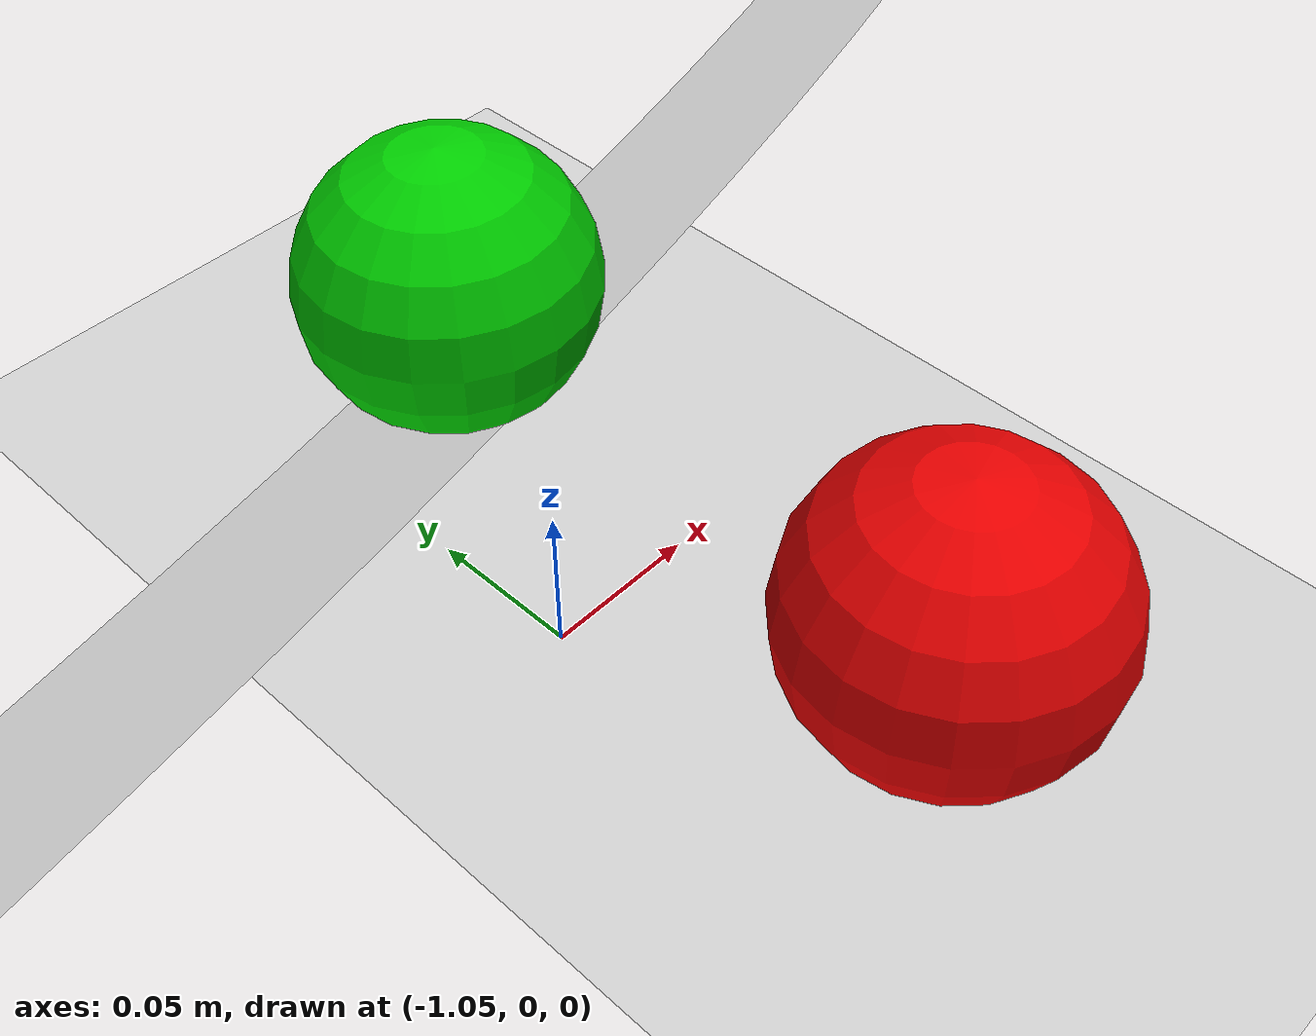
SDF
<?xml version="1.0"?>
<sdf version="1.6">
    <world name="default">
        <light name="sun" type="directional">
            <pose>0 0 30 0.5 0 0 0</pose>
            <cast_shadows>1</cast_shadows>
            <diffuse>0.8 0.8 0.8 1</diffuse>
            <specular>0.1 0.1 0.1 1</specular>
            <attenuation>
                <range>100</range>
            </attenuation>
            <direction>-0.5 0.5 -1</direction>
        </light>

        <physics name='default_physics' default='0' type='ode'>
      <max_step_size>0.001</max_step_size>
      <real_time_factor>1</real_time_factor>
      <real_time_update_rate>1000</real_time_update_rate>
    </physics>

        <gravity>0 0 -9.8</gravity>

        <scene>
            <ambient>1 1 1 1</ambient>
            <background>0.2 0.0 0.2 1</background>
            <shadows>1</shadows>
            <grid>0</grid>
        </scene>

        <include>
            <uri>model://empty_ground_plane</uri>
            <pose>0 0 -0.001 0 0 0</pose>
        </include>

        <!-- create the map -->
        <include>
            <uri>model://simple_track</uri>
        </include>

        <model name="box">
            <pose>-1 0 0 0 0 0</pose>
            <link name="link1">
               <collision name="collision">
                <geometry>
                    <box>
                    <size>.01 .01 .01</size>
                    </box>
                </geometry>
                </collision>
            </link>
	<link name="link2">

        <visual name="visual2">
        <pose>0 0.1 0.05 0 0 0</pose>
          <geometry>
            <sphere>
              <radius>0.05</radius>
            </sphere>
          </geometry>
           <material>
                    <ambient>0 .2 0 1</ambient>
                    <diffuse>0 0.8 0 1</diffuse>
                    <specular>0.1 0.1 0.1 1</specular>
                    <emissive>0 0 0 0</emissive>
                </material>
        </visual>
      </link>
      <link name="link3">

        <visual name="visual3">
        <pose>0 -0.1 0.05 0 0 0</pose>
          <geometry>
            <sphere>
              <radius>0.05</radius>
            </sphere>
            </geometry>
             <material>
                    <ambient>.4 0 0 1</ambient>
                    <diffuse>.9 0 0 1</diffuse>
                    <specular>0.1 0.1 0.1 1</specular>
                    <emissive>0 0 0 0</emissive>
                </material>
        </visual>
      </link>

      <joint type = "fixed" name = "join1">
        <parent>link1</parent>
        <child>link2</child>
        </joint>
         <joint type = "fixed" name = "join2">
        <parent>link1</parent>
        <child>link3</child>
        </joint>
      <plugin name="push_animate" filename="libanimated_box.so"/>
    </model>

    </world>
</sdf>

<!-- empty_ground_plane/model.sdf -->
<sdf version="1.6">
    <model name="empty_ground_plane">
        <static>true</static>
        <link name="link">
            <collision name="collision">
                <geometry>
                    <plane>
                        <normal>0 0 1</normal>
                        <size>100 100</size>
                    </plane>
                </geometry>
                <surface>
                    <friction>
                        <ode>
                            <mu>100</mu>
                            <mu2>50</mu2>
                        </ode>
                    </friction>
                </surface>
            </collision>

            <visual name="visual">
                <cast_shadows>false</cast_shadows>
                <geometry>
                    <plane>
                        <normal>0 0 1</normal>
                        <size>100 100</size>
                    </plane>
                </geometry>
                <material>
                    <script>
                        <uri>model://empty_ground_plane/materials/scripts/</uri>
                        <uri>model://empty_ground_plane/materials/textures</uri>
                        <name>EmptyGroundPlane/Image</name>
                    </script>
                </material>
            </visual>
        </link>
    </model>
</sdf>

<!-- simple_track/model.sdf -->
<sdf version="1.6">
    <model name="simple_track">
        <static>true</static>
        <link name="link">
            <visual name="visual">
                <cast_shadows>false</cast_shadows>
                <geometry>
                    <mesh>
                        <uri>model://simple_track/meshes/simple_track.dae</uri>
                        <scale>1 1 1</scale>
                    </mesh>
                </geometry>
            </visual>
        </link>
    </model>
</sdf>
